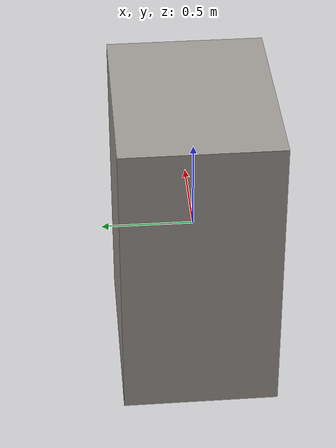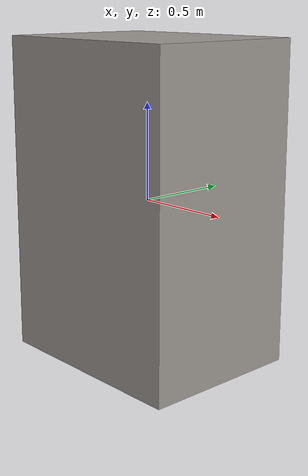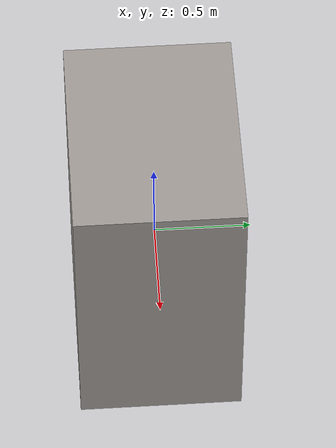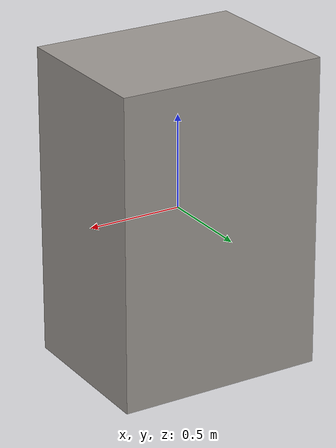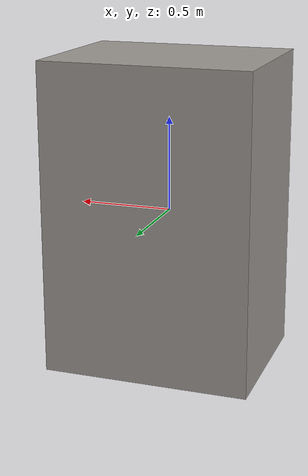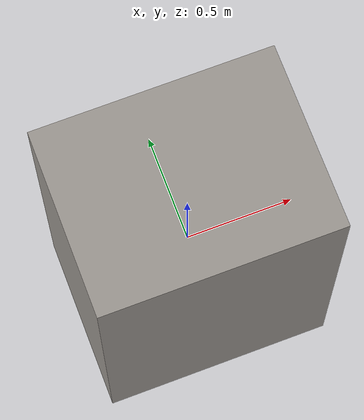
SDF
<?xml version="1.0"?>
<sdf version="1.6">
  <model name="XRayMachine">
    <static>true</static>
    <link name="link">
      <collision name="col">
        <geometry>
          <box>
            <size>1.1 0.85 1.65</size>
          </box>
        </geometry>
      </collision>
      <visual name="vis">
        <geometry>
          <box>
            <size>1.1 0.85 1.65</size>
          </box>
        </geometry>
        <material>
          <ambient>0.62 0.6 0.58 1</ambient>
          <diffuse>0.62 0.6 0.58 1</diffuse>
        </material>
      </visual>
    </link>
  </model>
</sdf>
